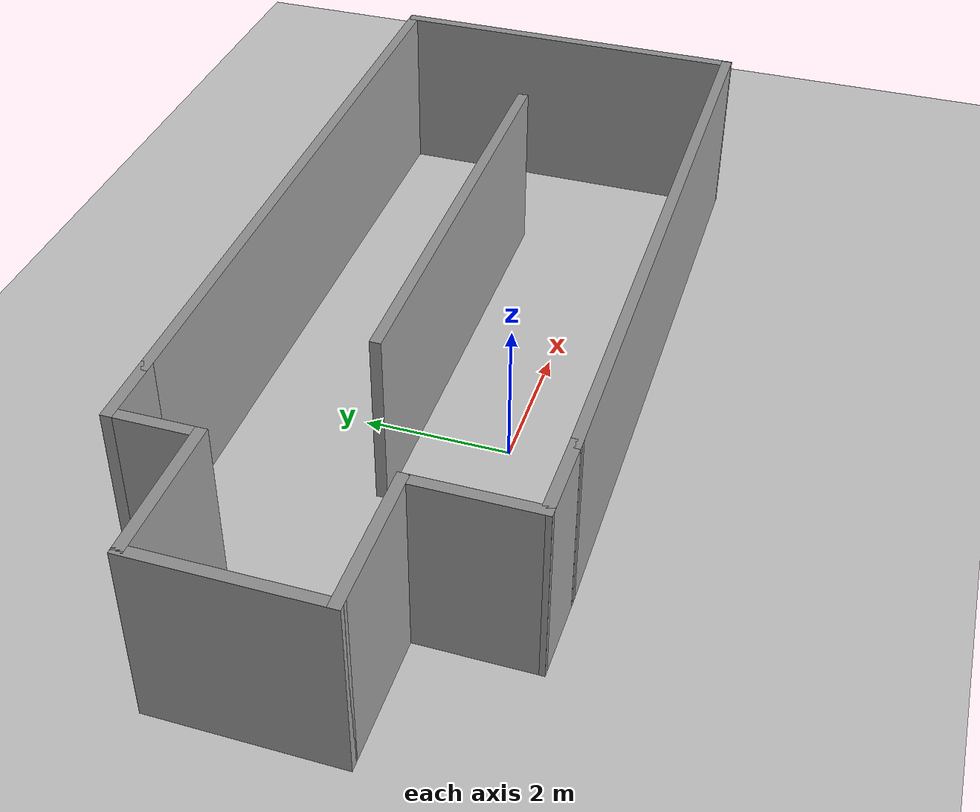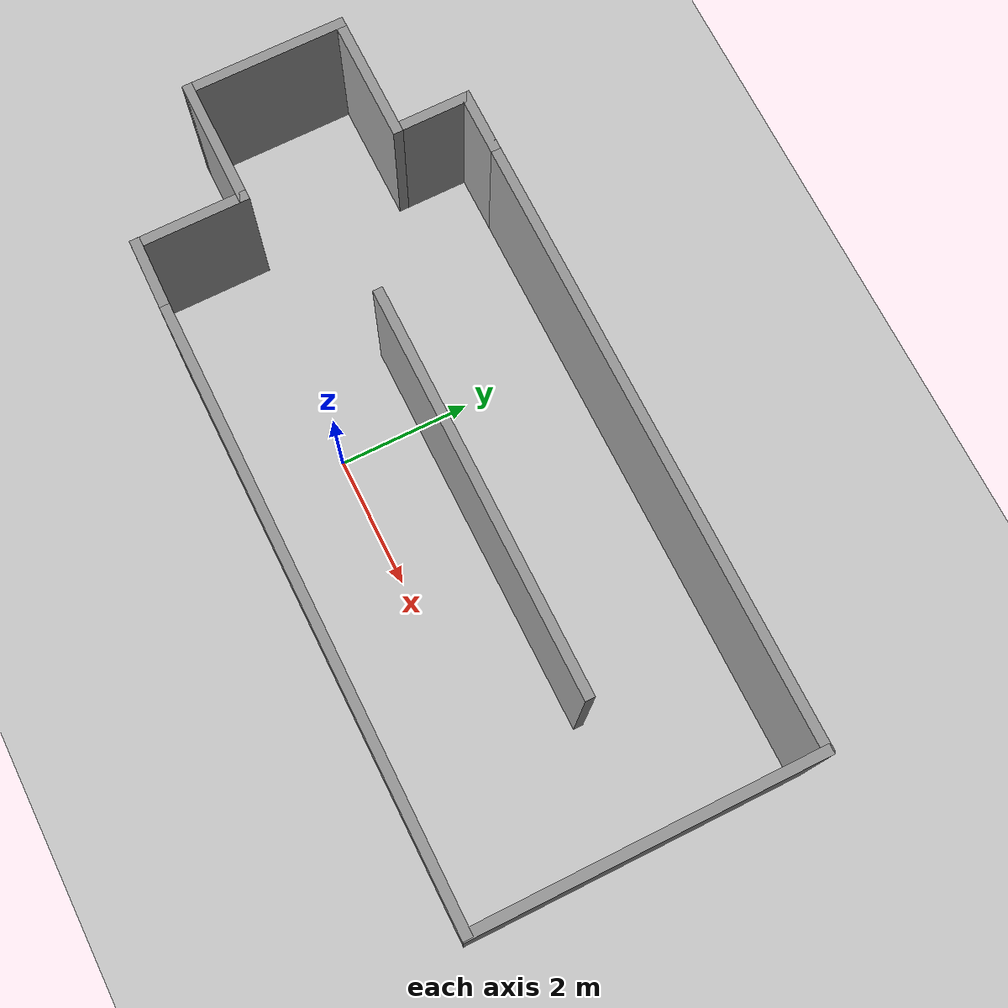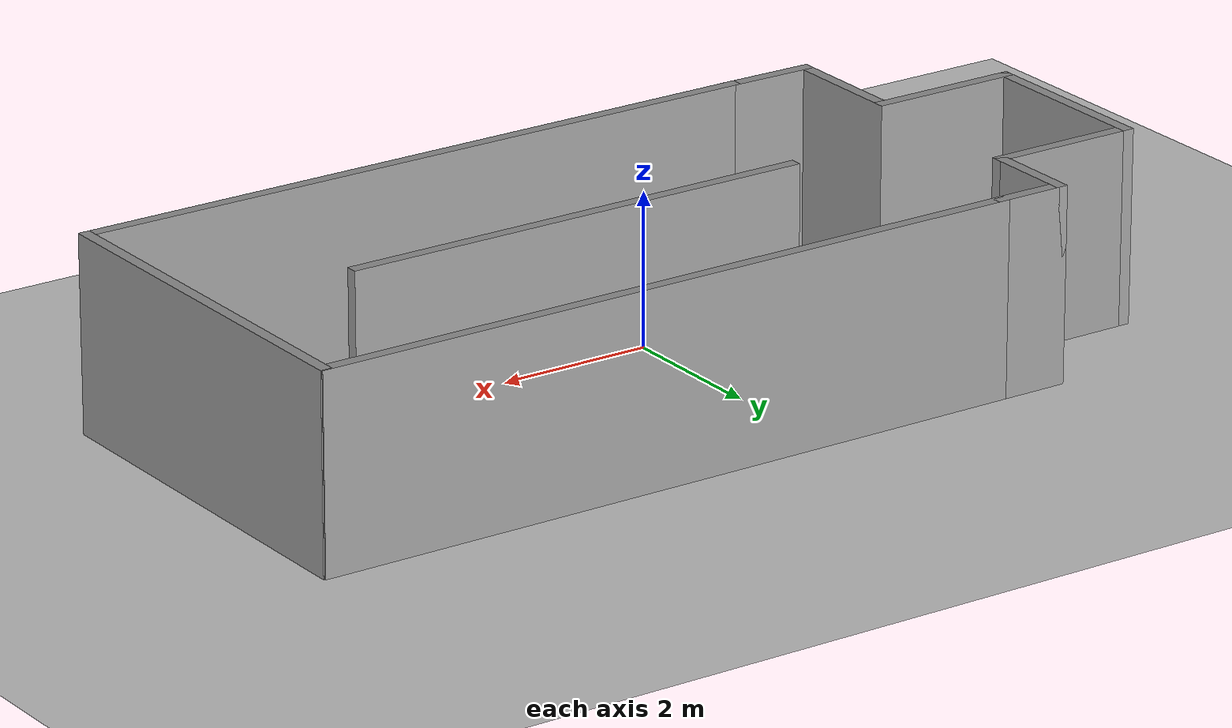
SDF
<sdf version="1.7">
 <world name="default">
  <light name="sun" type="directional">
   <pose>0 0 10 0 -0 0</pose>
   <diffuse>0.8 0.8 0.8 1</diffuse>
   <specular>0.2 0.2 0.2 1</specular>
   <attenuation>
    <range>1000</range>
    <constant>0.9</constant>
    <linear>0.01</linear>
    <quadratic>0.001</quadratic>
   </attenuation>
   <direction>-0.5 0.1 -0.9</direction>
   <spot><inner_angle>0</inner_angle><outer_angle>0</outer_angle><falloff>0</falloff></spot>
  </light>
  <model name="ground_plane">
   <static>1</static>
   <link name="link">
    <collision name="collision">
     <geometry><plane><normal>0 0 1</normal><size>100 100</size></plane></geometry>
     <surface><friction><ode><mu>100</mu><mu2>50</mu2></ode></friction></surface>
    </collision>
    <visual name="visual">
     <cast_shadows>0</cast_shadows>
     <geometry><plane><normal>0 0 1</normal><size>100 100</size></plane></geometry>
     <material>
      <script><uri>file://media/materials/scripts/gazebo.material</uri><name>Gazebo/Grey</name></script>
     </material>
    </visual>
   </link>
  </model>
  <gravity>0 0 -9.8</gravity>
  <magnetic_field>6e-06 2.3e-05 -4.2e-05</magnetic_field>
  <atmosphere type="adiabatic"/>
  <physics type="ode">
   <max_step_size>0.001</max_step_size>
   <real_time_factor>1</real_time_factor>
   <real_time_update_rate>1000</real_time_update_rate>
  </physics>
  <scene><ambient>0.4 0.4 0.4 1</ambient><background>0.7 0.7 0.7 1</background><shadows>1</shadows></scene>
  <audio><device>default</device></audio>
  <spherical_coordinates>
   <surface_model>EARTH_WGS84</surface_model>
   <latitude_deg>0</latitude_deg>
   <longitude_deg>0</longitude_deg>
   <elevation>0</elevation>
   <heading_deg>0</heading_deg>
  </spherical_coordinates>
  <model name="sera2">
   <pose>0.833095 1.14936 0 0 -0 0</pose>
   <link name="Wall_11">
    <collision name="Wall_11_Collision">
     <geometry><box><size>6.25 0.15 2.5</size></box></geometry>
     <pose>0 0 1.25 0 -0 0</pose>
    </collision>
    <visual name="Wall_11_Visual">
     <pose>0 0 1.25 0 -0 0</pose>
     <geometry><box><size>6.25 0.15 2.5</size></box></geometry>
     <material>
      <script><uri>file://media/materials/scripts/gazebo.material</uri><name>Gazebo/Grey</name></script>
      <ambient>1 1 1 1</ambient>
     </material>
     <meta><layer>0</layer></meta>
    </visual>
    <pose>1.01034 0.15845 0 0 -0 3.14159</pose>
   </link>
   <link name="Wall_14">
    <collision name="Wall_14_Collision">
     <geometry><box><size>1 0.15 2.5</size></box></geometry>
     <pose>0 0 1.25 0 -0 0</pose>
    </collision>
    <visual name="Wall_14_Visual">
     <pose>0 0 1.25 0 -0 0</pose>
     <geometry><box><size>1 0.15 2.5</size></box></geometry>
     <material>
      <script><uri>file://media/materials/scripts/gazebo.material</uri><name>Gazebo/Grey</name></script>
      <ambient>1 1 1 1</ambient>
     </material>
     <meta><layer>0</layer></meta>
    </visual>
    <pose>-3.75888 2.53466 0 0 -0 3.14159</pose>
   </link>
   <link name="Wall_15">
    <collision name="Wall_15_Collision">
     <geometry><box><size>1.25 0.15 2.5</size></box></geometry>
     <pose>0 0 1.25 0 -0 0</pose>
    </collision>
    <visual name="Wall_15_Visual">
     <pose>0 0 1.25 0 -0 0</pose>
     <geometry><box><size>1.25 0.15 2.5</size></box></geometry>
     <material>
      <script><uri>file://media/materials/scripts/gazebo.material</uri><name>Gazebo/Grey</name></script>
      <ambient>1 1 1 1</ambient>
     </material>
     <meta><layer>0</layer></meta>
    </visual>
    <pose>-4.18387 1.98466 0 0 -0 -1.5708</pose>
   </link>
   <link name="Wall_16">
    <collision name="Wall_16_Collision">
     <geometry><box><size>2 0.15 2.5</size></box></geometry>
     <pose>0 0 1.25 0 -0 0</pose>
    </collision>
    <visual name="Wall_16_Visual">
     <pose>0 0 1.25 0 -0 0</pose>
     <geometry><box><size>2 0.15 2.5</size></box></geometry>
     <material>
      <script><uri>file://media/materials/scripts/gazebo.material</uri><name>Gazebo/Grey</name></script>
      <ambient>1 1 1 1</ambient>
     </material>
     <meta><layer>0</layer></meta>
    </visual>
    <pose>-5.10887 1.43466 0 0 -0 3.14159</pose>
   </link>
   <link name="Wall_17">
    <collision name="Wall_17_Collision">
     <geometry><box><size>2.5 0.15 2.5</size></box></geometry>
     <pose>0 0 1.25 0 -0 0</pose>
    </collision>
    <visual name="Wall_17_Visual">
     <pose>0 0 1.25 0 -0 0</pose>
     <geometry><box><size>2.5 0.15 2.5</size></box></geometry>
     <material>
      <script><uri>file://media/materials/scripts/gazebo.material</uri><name>Gazebo/Grey</name></script>
      <ambient>1 1 1 1</ambient>
     </material>
     <meta><layer>0</layer></meta>
    </visual>
    <pose>-6.03388 0.259664 0 0 -0 -1.5708</pose>
   </link>
   <link name="Wall_18">
    <collision name="Wall_18_Collision">
     <geometry><box><size>2 0.15 2.5</size></box></geometry>
     <pose>0 0 1.25 0 -0 0</pose>
    </collision>
    <visual name="Wall_18_Visual">
     <pose>0 0 1.25 0 -0 0</pose>
     <geometry><box><size>2 0.15 2.5</size></box></geometry>
     <material>
      <script><uri>file://media/materials/scripts/gazebo.material</uri><name>Gazebo/Grey</name></script>
      <ambient>1 1 1 1</ambient>
     </material>
     <meta><layer>0</layer></meta>
    </visual>
    <pose>-5.10887 -0.915336 0 0 -0 0</pose>
   </link>
   <link name="Wall_19">
    <collision name="Wall_19_Collision">
     <geometry><box><size>1.75 0.15 2.5</size></box></geometry>
     <pose>0 0 1.25 0 -0 0</pose>
    </collision>
    <visual name="Wall_19_Visual">
     <pose>0 0 1.25 0 -0 0</pose>
     <geometry><box><size>1.75 0.15 2.5</size></box></geometry>
     <material>
      <script><uri>file://media/materials/scripts/gazebo.material</uri><name>Gazebo/Grey</name></script>
      <ambient>1 1 1 1</ambient>
     </material>
     <meta><layer>0</layer></meta>
    </visual>
    <pose>-4.18387 -1.71534 0 0 -0 -1.5708</pose>
   </link>
   <link name="Wall_2">
    <collision name="Wall_2_Collision">
     <geometry><box><size>9.25 0.15 2.5</size></box></geometry>
     <pose>0 0 1.25 0 -0 0</pose>
    </collision>
    <visual name="Wall_2_Visual">
     <pose>0 0 1.25 0 -0 0</pose>
     <geometry><box><size>9.25 0.15 2.5</size></box></geometry>
     <material>
      <script><uri>file://media/materials/scripts/gazebo.material</uri><name>Gazebo/Grey</name></script>
      <ambient>1 1 1 1</ambient>
     </material>
     <meta><layer>0</layer></meta>
    </visual>
    <pose>1.44863 -2.53342 0 0 -0 0</pose>
   </link>
   <link name="Wall_20">
    <collision name="Wall_20_Collision">
     <geometry><box><size>1.23266 0.15 2.5</size></box></geometry>
     <pose>0 0 1.25 0 -0 0</pose>
    </collision>
    <visual name="Wall_20_Visual">
     <pose>0 0 1.25 0 -0 0</pose>
     <geometry><box><size>1.23266 0.15 2.5</size></box></geometry>
     <material>
      <script><uri>file://media/materials/scripts/gazebo.material</uri><name>Gazebo/Grey</name></script>
      <ambient>1 1 1 1</ambient>
     </material>
     <meta><layer>0</layer></meta>
    </visual>
    <pose>-3.64262 -2.52438 0 0 -0 -0.016706</pose>
   </link>
   <link name="Wall_4">
    <collision name="Wall_4_Collision">
     <geometry><box><size>5.20063 0.15 2.5</size></box></geometry>
     <pose>0 0 1.25 0 -0 0</pose>
    </collision>
    <visual name="Wall_4_Visual">
     <pose>0 0 1.25 0 -0 0</pose>
     <geometry><box><size>5.20063 0.15 2.5</size></box></geometry>
     <material>
      <script><uri>file://media/materials/scripts/gazebo.material</uri><name>Gazebo/Grey</name></script>
      <ambient>1 1 1 1</ambient>
     </material>
     <meta><layer>0</layer></meta>
    </visual>
    <pose>6.02487 -0.008124 0 0 -0 1.56733</pose>
   </link>
   <link name="Wall_5">
    <collision name="Wall_5_Collision">
     <geometry><box><size>9.5 0.15 2.5</size></box></geometry>
     <pose>0 0 1.25 0 -0 0</pose>
    </collision>
    <visual name="Wall_5_Visual">
     <pose>0 0 1.25 0 -0 0</pose>
     <geometry><box><size>9.5 0.15 2.5</size></box></geometry>
     <material>
      <script><uri>file://media/materials/scripts/gazebo.material</uri><name>Gazebo/Grey</name></script>
      <ambient>1 1 1 1</ambient>
     </material>
     <meta><layer>0</layer></meta>
    </visual>
    <pose>1.34112 2.53466 0 0 -0 3.14159</pose>
   </link>
   <static>1</static>
  </model>
 </world>
</sdf>
